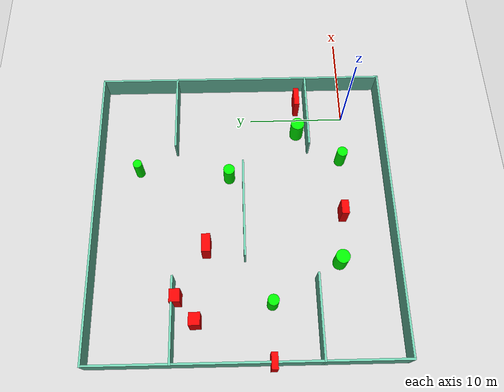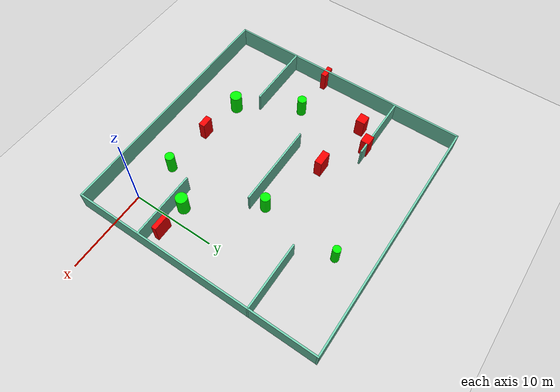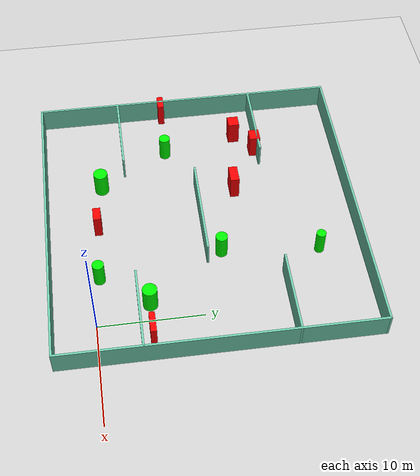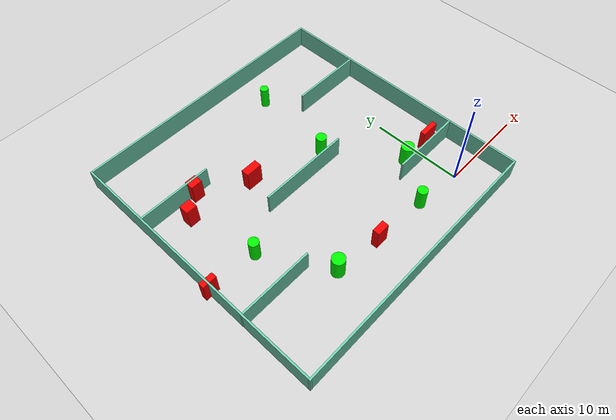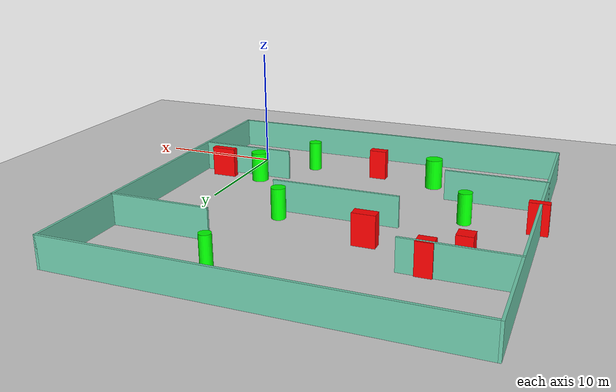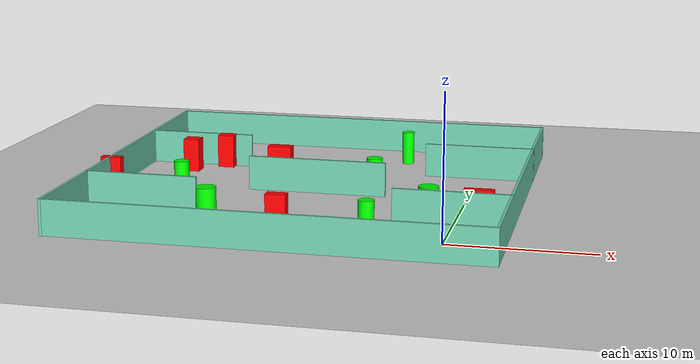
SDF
<sdf version="1.7">
 <world name="default">
  <light name="sun" type="directional">
   <pose>0 0 10 0 -0 0</pose>
   <diffuse>0.8 0.8 0.8 1</diffuse>
   <specular>0.2 0.2 0.2 1</specular>
   <attenuation>
    <range>1000</range>
    <constant>0.9</constant>
    <linear>0.01</linear>
    <quadratic>0.001</quadratic>
   </attenuation>
   <direction>-0.5 0.1 -0.9</direction>
   <spot><inner_angle>0</inner_angle><outer_angle>0</outer_angle><falloff>0</falloff></spot>
  </light>
  <model name="ground_plane">
   <static>1</static>
   <link name="link">
    <collision name="collision">
     <geometry><plane><normal>0 0 1</normal><size>100 100</size></plane></geometry>
     <surface>
      <contact><collide_bitmask>65535</collide_bitmask></contact>
      <friction><ode><mu>100</mu><mu2>50</mu2></ode></friction>
     </surface>
    </collision>
    <visual name="visual">
     <cast_shadows>0</cast_shadows>
     <geometry><plane><normal>0 0 1</normal><size>100 100</size></plane></geometry>
     <material>
      <script><uri>file://media/materials/scripts/gazebo.material</uri><name>Gazebo/Grey</name></script>
     </material>
    </visual>
   </link>
  </model>
  <gravity>0 0 -9.8</gravity>
  <magnetic_field>6e-06 2.3e-05 -4.2e-05</magnetic_field>
  <atmosphere type="adiabatic"/>
  <physics type="ode">
   <max_step_size>0.001</max_step_size>
   <real_time_factor>1</real_time_factor>
   <real_time_update_rate>1000</real_time_update_rate>
  </physics>
  <scene><ambient>0.4 0.4 0.4 1</ambient><background>0.7 0.7 0.7 1</background><shadows>1</shadows></scene>
  <spherical_coordinates>
   <surface_model>EARTH_WGS84</surface_model>
   <latitude_deg>0</latitude_deg>
   <longitude_deg>0</longitude_deg>
   <elevation>0</elevation>
   <heading_deg>0</heading_deg>
  </spherical_coordinates>
  <model name="my_base_walls">
   <link name="Wall_10">
    <collision name="Wall_10_Collision">
     <geometry><box><size>8.2 0.2 2.5</size></box></geometry>
     <pose>0 0 1.25 0 -0 0</pose>
    </collision>
    <visual name="Wall_10_Visual">
     <pose>0 0 1.25 0 -0 0</pose>
     <geometry><box><size>8.2 0.2 2.5</size></box></geometry>
     <material>
      <script><uri>file://media/materials/scripts/gazebo.material</uri><name>Gazebo/Grey</name></script>
      <ambient>0.435294 0.796078 0.67451 1</ambient>
     </material>
     <meta><layer>0</layer></meta>
    </visual>
    <pose>-11 -7 0 0 -0 0</pose>
   </link>
   <link name="Wall_12">
    <collision name="Wall_12_Collision">
     <geometry><box><size>8.2 0.2 2.5</size></box></geometry>
     <pose>0 0 1.25 0 -0 0</pose>
    </collision>
    <visual name="Wall_12_Visual">
     <pose>0 0 1.25 0 -0 0</pose>
     <geometry><box><size>8.2 0.2 2.5</size></box></geometry>
     <material>
      <script><uri>file://media/materials/scripts/gazebo.material</uri><name>Gazebo/Grey</name></script>
      <ambient>0.435294 0.796078 0.67451 1</ambient>
     </material>
     <meta><layer>0</layer></meta>
    </visual>
    <pose>-11 7 0 0 -0 0</pose>
   </link>
   <link name="Wall_14">
    <collision name="Wall_14_Collision">
     <geometry><box><size>8.2 0.2 2.5</size></box></geometry>
     <pose>0 0 1.25 0 -0 0</pose>
    </collision>
    <visual name="Wall_14_Visual">
     <pose>0 0 1.25 0 -0 0</pose>
     <geometry><box><size>8.2 0.2 2.5</size></box></geometry>
     <material>
      <script><uri>file://media/materials/scripts/gazebo.material</uri><name>Gazebo/Grey</name></script>
      <ambient>0.435294 0.796078 0.67451 1</ambient>
     </material>
     <meta><layer>0</layer></meta>
    </visual>
    <pose>11 7 0 0 -0 3.14159</pose>
   </link>
   <link name="Wall_16">
    <collision name="Wall_16_Collision">
     <geometry><box><size>10.2 0.2 2.5</size></box></geometry>
     <pose>0 0 1.25 0 -0 0</pose>
    </collision>
    <visual name="Wall_16_Visual">
     <pose>0 0 1.25 0 -0 0</pose>
     <geometry><box><size>10.2 0.2 2.5</size></box></geometry>
     <material>
      <script><uri>file://media/materials/scripts/gazebo.material</uri><name>Gazebo/Grey</name></script>
      <ambient>0.435294 0.796078 0.67451 1</ambient>
     </material>
     <meta><layer>0</layer></meta>
    </visual>
    <pose>0 0 0 0 -0 3.14159</pose>
   </link>
   <link name="Wall_2">
    <collision name="Wall_2_Collision">
     <geometry><box><size>30.2 0.2 2.5</size></box></geometry>
     <pose>0 0 1.25 0 -0 0</pose>
    </collision>
    <visual name="Wall_2_Visual">
     <pose>0 0 1.25 0 -0 0</pose>
     <geometry><box><size>30.2 0.2 2.5</size></box></geometry>
     <material>
      <script><uri>file://media/materials/scripts/gazebo.material</uri><name>Gazebo/Grey</name></script>
      <ambient>0.435294 0.796078 0.67451 1</ambient>
     </material>
     <meta><layer>0</layer></meta>
    </visual>
    <pose>0 -15 0 0 -0 3.14159</pose>
   </link>
   <link name="Wall_3">
    <collision name="Wall_3_Collision">
     <geometry><box><size>30.2 0.2 2.5</size></box></geometry>
     <pose>0 0 1.25 0 -0 0</pose>
    </collision>
    <visual name="Wall_3_Visual">
     <pose>0 0 1.25 0 -0 0</pose>
     <geometry><box><size>30.2 0.2 2.5</size></box></geometry>
     <material>
      <script><uri>file://media/materials/scripts/gazebo.material</uri><name>Gazebo/Grey</name></script>
      <ambient>0.435294 0.796078 0.67451 1</ambient>
     </material>
     <meta><layer>0</layer></meta>
    </visual>
    <pose>-15 0 0 0 -0 1.5708</pose>
   </link>
   <link name="Wall_4">
    <collision name="Wall_4_Collision">
     <geometry><box><size>30.2 0.2 2.5</size></box></geometry>
     <pose>0 0 1.25 0 -0 0</pose>
    </collision>
    <visual name="Wall_4_Visual">
     <pose>0 0 1.25 0 -0 0</pose>
     <geometry><box><size>30.2 0.2 2.5</size></box></geometry>
     <material>
      <script><uri>file://media/materials/scripts/gazebo.material</uri><name>Gazebo/Grey</name></script>
      <ambient>0.435294 0.796078 0.67451 1</ambient>
     </material>
     <meta><layer>0</layer></meta>
    </visual>
    <pose>0 15 0 0 -0 0</pose>
   </link>
   <link name="Wall_6">
    <collision name="Wall_6_Collision">
     <geometry><box><size>30.2 0.2 2.5</size></box></geometry>
     <pose>0 0 1.25 0 -0 0</pose>
    </collision>
    <visual name="Wall_6_Visual">
     <pose>0 0 1.25 0 -0 0</pose>
     <geometry><box><size>30.2 0.2 2.5</size></box></geometry>
     <material>
      <script><uri>file://media/materials/scripts/gazebo.material</uri><name>Gazebo/Grey</name></script>
      <ambient>0.435294 0.796078 0.67451 1</ambient>
     </material>
     <meta><layer>0</layer></meta>
    </visual>
    <pose>15 0 0 0 -0 1.5708</pose>
   </link>
   <link name="Wall_8">
    <collision name="Wall_8_Collision">
     <geometry><box><size>8.2 0.2 2.5</size></box></geometry>
     <pose>0 0 1.25 0 -0 0</pose>
    </collision>
    <visual name="Wall_8_Visual">
     <pose>0 0 1.25 0 -0 0</pose>
     <geometry><box><size>8.2 0.2 2.5</size></box></geometry>
     <material>
      <script><uri>file://media/materials/scripts/gazebo.material</uri><name>Gazebo/Grey</name></script>
      <ambient>0.435294 0.796078 0.67451 1</ambient>
     </material>
     <meta><layer>0</layer></meta>
    </visual>
    <pose>11 -7 0 0 -0 3.14159</pose>
   </link>
   <static>1</static>
   <pose>-11 11 0 0 -0 0</pose>
  </model>
  <model name="cylinder1">
   <static>1</static>
   <link name="link">
    <inertial>
     <mass>1</mass>
     <inertia><ixx>0.5</ixx><ixy>0</ixy><ixz>0</ixz><iyy>0.5</iyy><iyz>0</iyz><izz>1</izz></inertia>
    </inertial>
    <collision name="collision">
     <geometry><cylinder><radius>0.5486246160176628</radius><length>2.5</length></cylinder></geometry>
    </collision>
    <visual name="visual">
     <geometry><cylinder><radius>0.5486246160176628</radius><length>2.5</length></cylinder></geometry>
     <material>
      <ambient>0 1 0 1</ambient>
      <diffuse>0 1 0 1</diffuse>
      <specular>0.1 0.1 0.1 1</specular>
      <emissive>0 0 0 0</emissive>
     </material>
    </visual>
   </link>
   <pose>-20.4527916244514 8.426459480608099 1.25 0 0 0</pose>
  </model>
  <model name="cylinder2">
   <static>1</static>
   <link name="link">
    <inertial>
     <mass>1</mass>
     <inertia><ixx>0.5</ixx><ixy>0</ixy><ixz>0</ixz><iyy>0.5</iyy><iyz>0</iyz><izz>1</izz></inertia>
    </inertial>
    <collision name="collision">
     <geometry><cylinder><radius>0.45854546076283365</radius><length>2.5</length></cylinder></geometry>
    </collision>
    <visual name="visual">
     <geometry><cylinder><radius>0.45854546076283365</radius><length>2.5</length></cylinder></geometry>
     <material>
      <ambient>0 1 0 1</ambient>
      <diffuse>0 1 0 1</diffuse>
      <specular>0.1 0.1 0.1 1</specular>
      <emissive>0 0 0 0</emissive>
     </material>
    </visual>
   </link>
   <pose>-6.140295422755534 21.88069212910462 1.25 0 0 0</pose>
  </model>
  <model name="cylinder3">
   <static>1</static>
   <link name="link">
    <inertial>
     <mass>1</mass>
     <inertia><ixx>0.5</ixx><ixy>0</ixy><ixz>0</ixz><iyy>0.5</iyy><iyz>0</iyz><izz>1</izz></inertia>
    </inertial>
    <collision name="collision">
     <geometry><cylinder><radius>0.6986525394659769</radius><length>2.5</length></cylinder></geometry>
    </collision>
    <visual name="visual">
     <geometry><cylinder><radius>0.6986525394659769</radius><length>2.5</length></cylinder></geometry>
     <material>
      <ambient>0 1 0 1</ambient>
      <diffuse>0 1 0 1</diffuse>
      <specular>0.1 0.1 0.1 1</specular>
      <emissive>0 0 0 0</emissive>
     </material>
    </visual>
   </link>
   <pose>-1.7789957761990465 5.0854592515485635 1.25 0 0 0</pose>
  </model>
  <model name="cylinder4">
   <static>1</static>
   <link name="link">
    <inertial>
     <mass>1</mass>
     <inertia><ixx>0.5</ixx><ixy>0</ixy><ixz>0</ixz><iyy>0.5</iyy><iyz>0</iyz><izz>1</izz></inertia>
    </inertial>
    <collision name="collision">
     <geometry><cylinder><radius>0.577129744074661</radius><length>2.5</length></cylinder></geometry>
    </collision>
    <visual name="visual">
     <geometry><cylinder><radius>0.577129744074661</radius><length>2.5</length></cylinder></geometry>
     <material>
      <ambient>0 1 0 1</ambient>
      <diffuse>0 1 0 1</diffuse>
      <specular>0.1 0.1 0.1 1</specular>
      <emissive>0 0 0 0</emissive>
     </material>
    </visual>
   </link>
   <pose>-6.973812965034501 12.444615131974528 1.25 0 0 0</pose>
  </model>
  <model name="cylinder5">
   <static>1</static>
   <link name="link">
    <inertial>
     <mass>1</mass>
     <inertia><ixx>0.5</ixx><ixy>0</ixy><ixz>0</ixz><iyy>0.5</iyy><iyz>0</iyz><izz>1</izz></inertia>
    </inertial>
    <collision name="collision">
     <geometry><cylinder><radius>0.5478293133223529</radius><length>2.5</length></cylinder></geometry>
    </collision>
    <visual name="visual">
     <geometry><cylinder><radius>0.5478293133223529</radius><length>2.5</length></cylinder></geometry>
     <material>
      <ambient>0 1 0 1</ambient>
      <diffuse>0 1 0 1</diffuse>
      <specular>0.1 0.1 0.1 1</specular>
      <emissive>0 0 0 0</emissive>
     </material>
    </visual>
   </link>
   <pose>-5.164187724668343 0.6106011124188355 1.25 0 0 0</pose>
  </model>
  <model name="cylinder6">
   <static>1</static>
   <link name="link">
    <inertial>
     <mass>1</mass>
     <inertia><ixx>0.5</ixx><ixy>0</ixy><ixz>0</ixz><iyy>0.5</iyy><iyz>0</iyz><izz>1</izz></inertia>
    </inertial>
    <collision name="collision">
     <geometry><cylinder><radius>0.6967936627903281</radius><length>2.5</length></cylinder></geometry>
    </collision>
    <visual name="visual">
     <geometry><cylinder><radius>0.6967936627903281</radius><length>2.5</length></cylinder></geometry>
     <material>
      <ambient>0 1 0 1</ambient>
      <diffuse>0 1 0 1</diffuse>
      <specular>0.1 0.1 0.1 1</specular>
      <emissive>0 0 0 0</emissive>
     </material>
    </visual>
   </link>
   <pose>-16.40434477737888 1.5630339265708582 1.25 0 0 0</pose>
  </model>
  <model name="box1">
   <static>1</static>
   <link name="link">
    <inertial>
     <mass>1</mass>
     <inertia><ixx>0.083</ixx><ixy>0</ixy><ixz>0</ixz><iyy>0.083</iyy><iyz>0</iyz><izz>0.083</izz></inertia>
    </inertial>
    <collision name="collision">
     <geometry><box><size>1.4313055466109743 0.7492042135080151 2.5</size></box></geometry>
    </collision>
    <visual name="visual">
     <geometry><box><size>1.4313055466109743 0.7492042135080151 2.5</size></box></geometry>
     <material>
      <ambient>1 0 0 1</ambient>
      <diffuse>1 0 0 1</diffuse>
      <specular>0.1 0.1 0.1 1</specular>
      <emissive>0 0 0 0</emissive>
     </material>
    </visual>
    <sensor name="my_contact" type="contact">
     <contact><collision>box_collision</collision><topic>__default_topic__</topic></contact>
    </sensor>
   </link>
   <pose>-11.29350636107894 0.872676028805472 1.25 0 0 0</pose>
  </model>
  <model name="box2">
   <static>1</static>
   <link name="link">
    <inertial>
     <mass>1</mass>
     <inertia><ixx>0.083</ixx><ixy>0</ixy><ixz>0</ixz><iyy>0.083</iyy><iyz>0</iyz><izz>0.083</izz></inertia>
    </inertial>
    <collision name="collision">
     <geometry><box><size>1.2550797873655508 1.0413308099624299 2.5</size></box></geometry>
    </collision>
    <visual name="visual">
     <geometry><box><size>1.2550797873655508 1.0413308099624299 2.5</size></box></geometry>
     <material>
      <ambient>1 0 0 1</ambient>
      <diffuse>1 0 0 1</diffuse>
      <specular>0.1 0.1 0.1 1</specular>
      <emissive>0 0 0 0</emissive>
     </material>
    </visual>
    <sensor name="my_contact" type="contact">
     <contact><collision>box_collision</collision><topic>__default_topic__</topic></contact>
    </sensor>
   </link>
   <pose>-19.824490357164127 17.706850895100196 1.25 0 0 0</pose>
  </model>
  <model name="box3">
   <static>1</static>
   <link name="link">
    <inertial>
     <mass>1</mass>
     <inertia><ixx>0.083</ixx><ixy>0</ixy><ixz>0</ixz><iyy>0.083</iyy><iyz>0</iyz><izz>0.083</izz></inertia>
    </inertial>
    <collision name="collision">
     <geometry><box><size>2.055357657742711 0.5566432067332953 2.5</size></box></geometry>
    </collision>
    <visual name="visual">
     <geometry><box><size>2.055357657742711 0.5566432067332953 2.5</size></box></geometry>
     <material>
      <ambient>1 0 0 1</ambient>
      <diffuse>1 0 0 1</diffuse>
      <specular>0.1 0.1 0.1 1</specular>
      <emissive>0 0 0 0</emissive>
     </material>
    </visual>
    <sensor name="my_contact" type="contact">
     <contact><collision>box_collision</collision><topic>__default_topic__</topic></contact>
    </sensor>
   </link>
   <pose>1.6620578176792904 5.026806089087859 1.25 0 0 0</pose>
  </model>
  <model name="box4">
   <static>1</static>
   <link name="link">
    <inertial>
     <mass>1</mass>
     <inertia><ixx>0.083</ixx><ixy>0</ixy><ixz>0</ixz><iyy>0.083</iyy><iyz>0</iyz><izz>0.083</izz></inertia>
    </inertial>
    <collision name="collision">
     <geometry><box><size>1.5411212459973314 0.6265007835037273 2.5</size></box></geometry>
    </collision>
    <visual name="visual">
     <geometry><box><size>1.5411212459973314 0.6265007835037273 2.5</size></box></geometry>
     <material>
      <ambient>1 0 0 1</ambient>
      <diffuse>1 0 0 1</diffuse>
      <specular>0.1 0.1 0.1 1</specular>
      <emissive>0 0 0 0</emissive>
     </material>
    </visual>
    <sensor name="my_contact" type="contact">
     <contact><collision>box_collision</collision><topic>__default_topic__</topic></contact>
    </sensor>
   </link>
   <pose>-25.87988193273781 8.539816168513857 1.25 0 0 0</pose>
  </model>
  <model name="box5">
   <static>1</static>
   <link name="link">
    <inertial>
     <mass>1</mass>
     <inertia><ixx>0.083</ixx><ixy>0</ixy><ixz>0</ixz><iyy>0.083</iyy><iyz>0</iyz><izz>0.083</izz></inertia>
    </inertial>
    <collision name="collision">
     <geometry><box><size>1.7988644285833577 0.8672661690596009 2.5</size></box></geometry>
    </collision>
    <visual name="visual">
     <geometry><box><size>1.7988644285833577 0.8672661690596009 2.5</size></box></geometry>
     <material>
      <ambient>1 0 0 1</ambient>
      <diffuse>1 0 0 1</diffuse>
      <specular>0.1 0.1 0.1 1</specular>
      <emissive>0 0 0 0</emissive>
     </material>
    </visual>
    <sensor name="my_contact" type="contact">
     <contact><collision>box_collision</collision><topic>__default_topic__</topic></contact>
    </sensor>
   </link>
   <pose>-14.737520110011314 14.79988172773363 1.25 0 0 0</pose>
  </model>
  <model name="box6">
   <static>1</static>
   <link name="link">
    <inertial>
     <mass>1</mass>
     <inertia><ixx>0.083</ixx><ixy>0</ixy><ixz>0</ixz><iyy>0.083</iyy><iyz>0</iyz><izz>0.083</izz></inertia>
    </inertial>
    <collision name="collision">
     <geometry><box><size>1.212644560829853 1.1054056647037969 2.5</size></box></geometry>
    </collision>
    <visual name="visual">
     <geometry><box><size>1.212644560829853 1.1054056647037969 2.5</size></box></geometry>
     <material>
      <ambient>1 0 0 1</ambient>
      <diffuse>1 0 0 1</diffuse>
      <specular>0.1 0.1 0.1 1</specular>
      <emissive>0 0 0 0</emissive>
     </material>
    </visual>
    <sensor name="my_contact" type="contact">
     <contact><collision>box_collision</collision><topic>__default_topic__</topic></contact>
    </sensor>
   </link>
   <pose>-22.03641925387688 15.828769841067889 1.25 0 0 0</pose>
  </model>
 </world>
</sdf>
